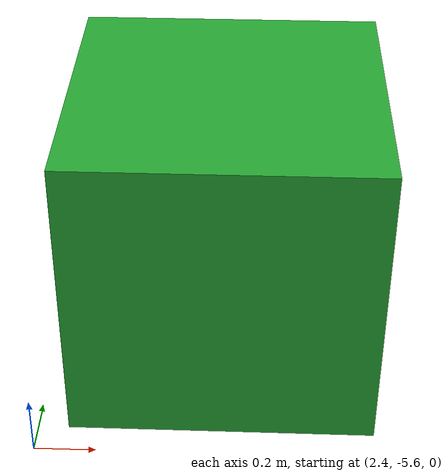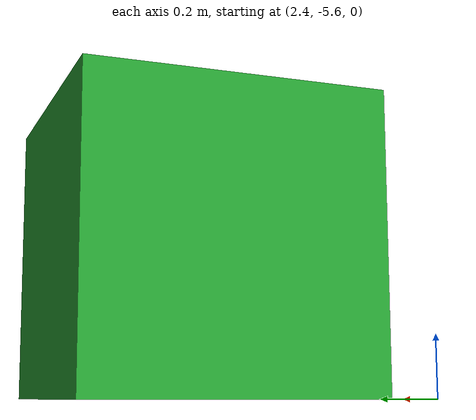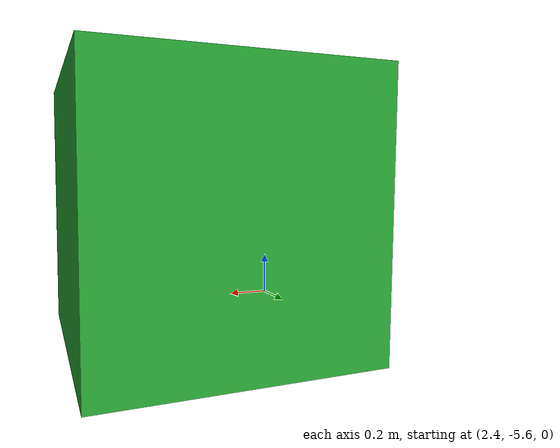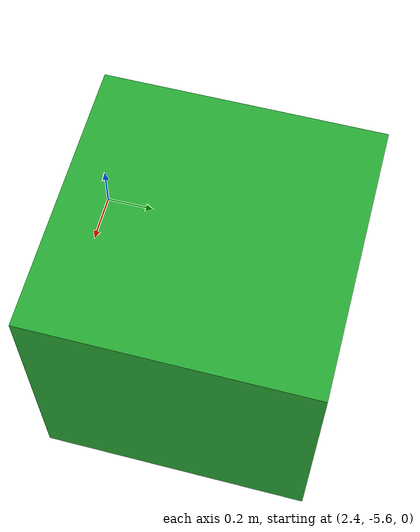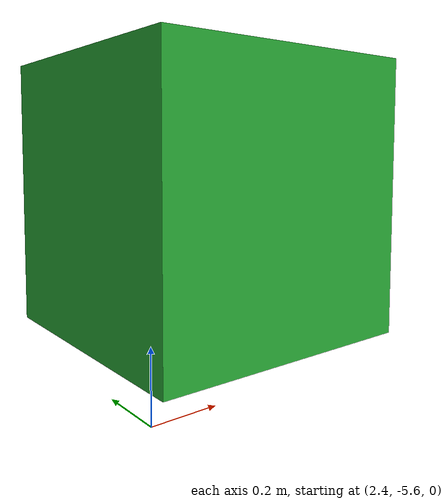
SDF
<?xml version='1.0'?>
<sdf version="1.5">
  <model name="green_obs">
    <pose>3 -5 0.5 0 0 1.5708</pose>
    <static>true</static>
    <link name="link">
      <collision name="collision">
        <geometry>
          <box>
            <size>1 1 1</size>
          </box>
        </geometry>
      </collision>
      <visual name='visual'>
        <pose>0 0 0 0 0 0</pose>
        <geometry>
            <mesh>
              <uri>model://obs_1/meshes/cube.dae</uri>
            </mesh>
        </geometry>
        <material>
          <script>
            <uri>model://obs_1/materials/scripts</uri>
            <uri>model://obs_1/materials/textures</uri>
            <name>obsgreen</name>
          </script>
        </material>
      </visual>
    </link>
  </model>
</sdf>
